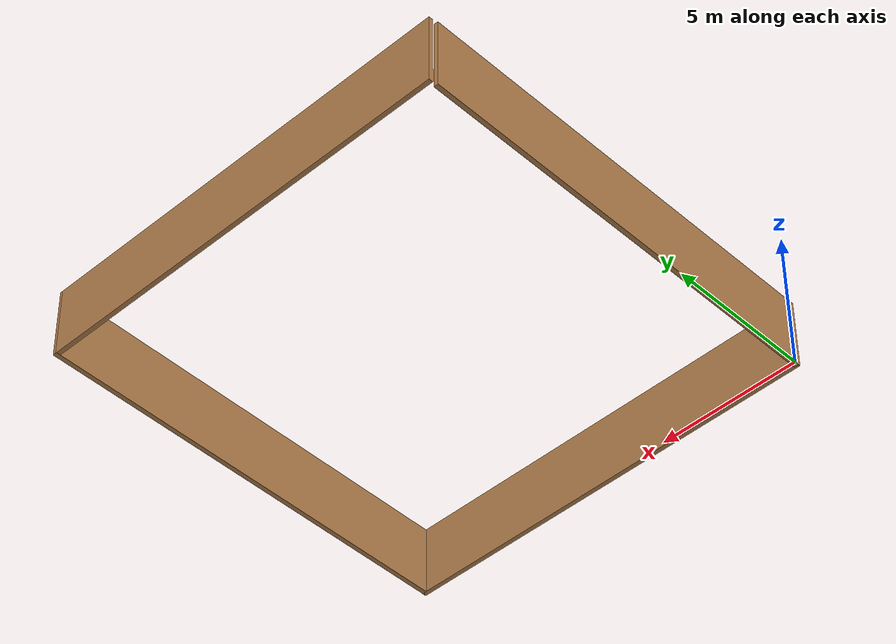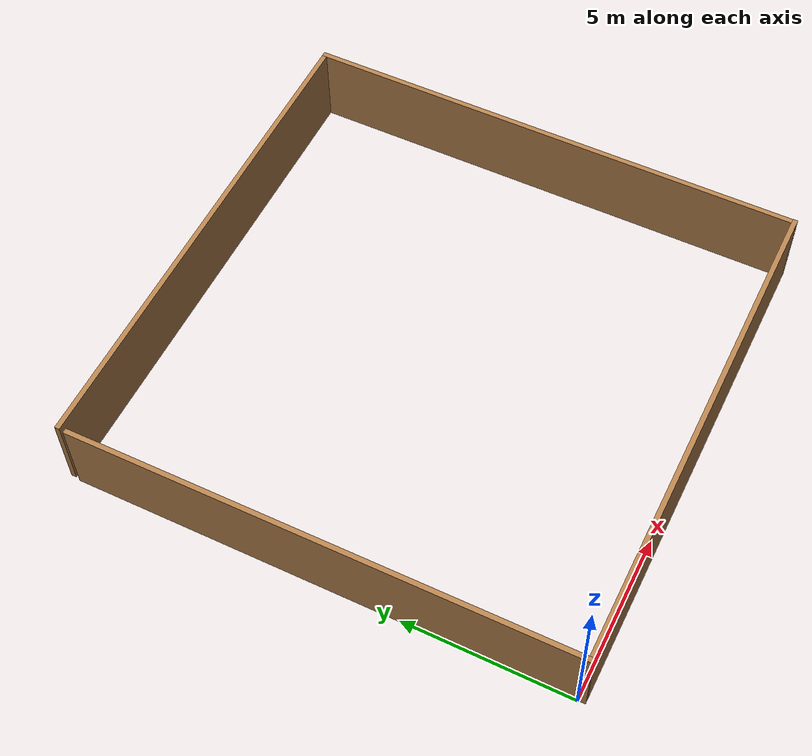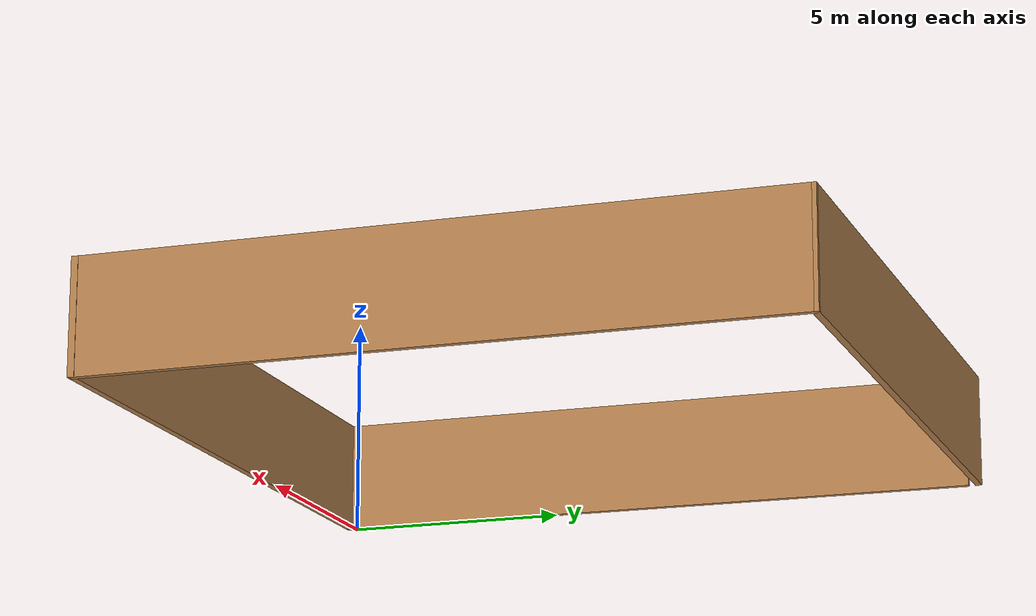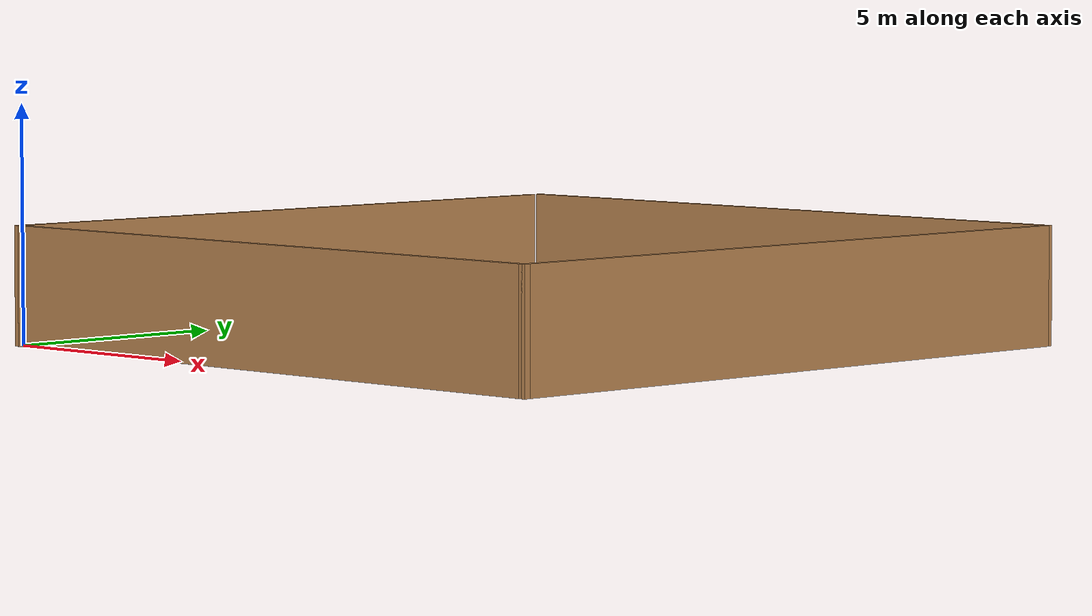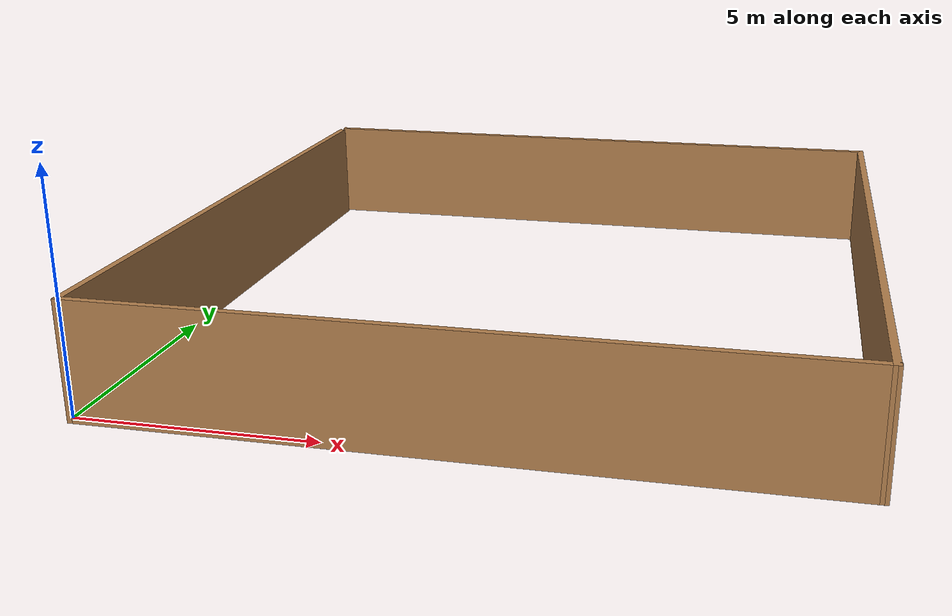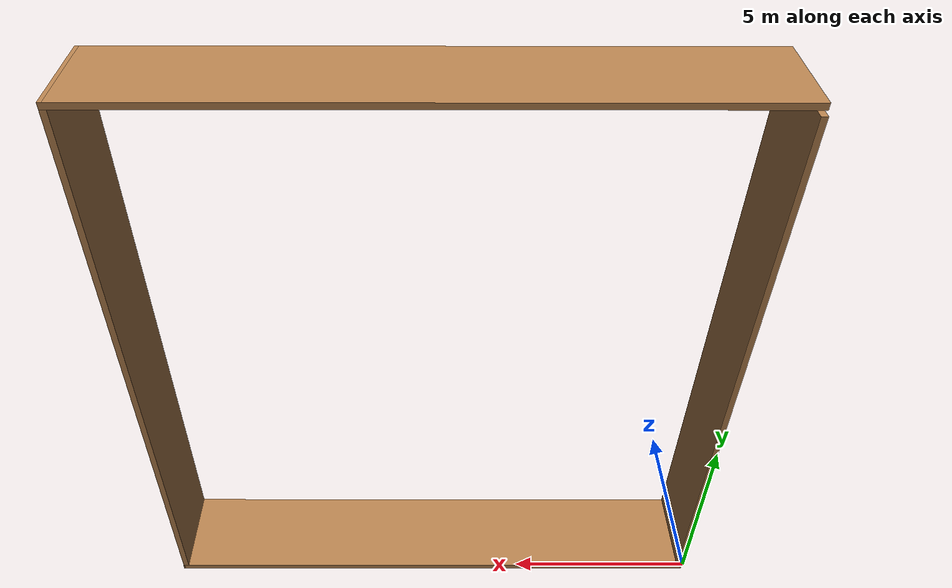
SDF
<?xml version='1.0'?>
<sdf version='1.7'>
  <model name='15x15'>
    <pose>7.47865 7.40709 0 0 -0 0</pose>
    <link name='Wall_18'>
      <collision name='Wall_18_Collision'>
        <geometry>
          <box>
            <size>15 0.15 2.5</size>
          </box>
        </geometry>
        <pose>0 0 1.25 0 -0 0</pose>
      </collision>
      <visual name='Wall_18_Visual'>
        <pose>0 0 1.25 0 -0 0</pose>
        <geometry>
          <box>
            <size>15 0.15 2.5</size>
          </box>
        </geometry>
        <material>
          <script>
            <uri>file://media/materials/scripts/gazebo.material</uri>
            <name>Gazebo/Wood</name>
          </script>
          <ambient>1 1 1 1</ambient>
        </material>
        <meta>
          <layer>0</layer>
        </meta>
      </visual>
      <pose>0.036371 -7.55427 0 0 -0 3.14159</pose>
    </link>
    <link name='Wall_20'>
      <collision name='Wall_20_Collision'>
        <geometry>
          <box>
            <size>14.9714 0.15 2.5</size>
          </box>
        </geometry>
        <pose>0 0 1.25 0 -0 0</pose>
      </collision>
      <visual name='Wall_20_Visual'>
        <pose>0 0 1.25 0 -0 0</pose>
        <geometry>
          <box>
            <size>14.9714 0.15 2.5</size>
          </box>
        </geometry>
        <material>
          <script>
            <uri>file://media/materials/scripts/gazebo.material</uri>
            <name>Gazebo/Wood</name>
          </script>
          <ambient>1 1 1 1</ambient>
        </material>
        <meta>
          <layer>0</layer>
        </meta>
      </visual>
      <pose>-7.42916 -0.143755 0 0 -0 1.5751</pose>
    </link>
    <link name='Wall_22'>
      <collision name='Wall_22_Collision'>
        <geometry>
          <box>
            <size>15 0.15 2.5</size>
          </box>
        </geometry>
        <pose>0 0 1.25 0 -0 0</pose>
      </collision>
      <visual name='Wall_22_Visual'>
        <pose>0 0 1.25 0 -0 0</pose>
        <geometry>
          <box>
            <size>15 0.15 2.5</size>
          </box>
        </geometry>
        <material>
          <script>
            <uri>file://media/materials/scripts/gazebo.material</uri>
            <name>Gazebo/Wood</name>
          </script>
          <ambient>1 1 1 1</ambient>
        </material>
        <meta>
          <layer>0</layer>
        </meta>
      </visual>
      <pose>0.010902 7.55457 0 0 -0 0</pose>
    </link>
    <link name='Wall_23'>
      <collision name='Wall_23_Collision'>
        <geometry>
          <box>
            <size>15.2589 0.15 2.5</size>
          </box>
        </geometry>
        <pose>0 0 1.25 0 -0 0</pose>
      </collision>
      <visual name='Wall_23_Visual'>
        <pose>0 0 1.25 0 -0 0</pose>
        <geometry>
          <box>
            <size>15.2589 0.15 2.5</size>
          </box>
        </geometry>
        <material>
          <script>
            <uri>file://media/materials/scripts/gazebo.material</uri>
            <name>Gazebo/Wood</name>
          </script>
          <ambient>1 1 1 1</ambient>
        </material>
        <meta>
          <layer>0</layer>
        </meta>
      </visual>
      <pose>7.44431 0.000147 0 0 -0 -1.56968</pose>
    </link>
    <static>1</static>
  </model>
</sdf>
